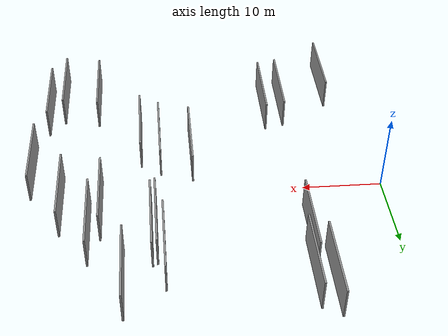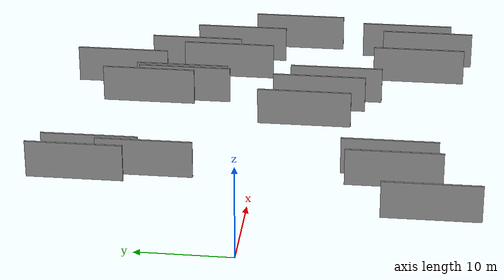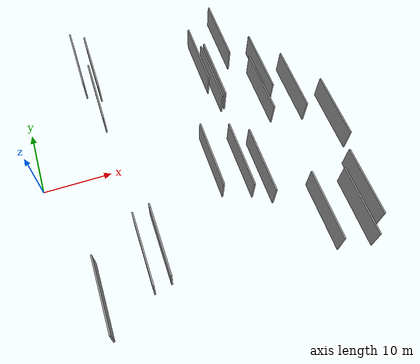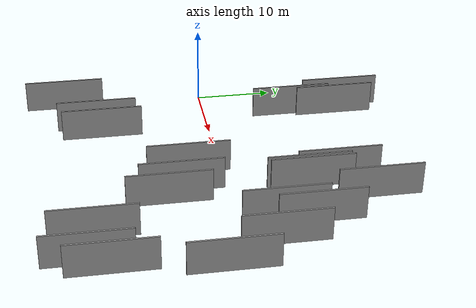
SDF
<sdf version="1.6">
 <world name="default">
  <scene>
   <sky><clouds><speed>12</speed></clouds></sky>
   <ambient>0.4 0.4 0.4 1</ambient>
   <background>0.7 0.7 0.7 1</background>
   <shadows>1</shadows>
  </scene>
  <gravity>0 0 -9.8066</gravity>
  <magnetic_field>6e-06 2.3e-05 -4.2e-05</magnetic_field>
  <physics default="0" name="default_physics" type="ode">
   <ode>
    <solver>
     <type>quick</type>
     <iters>10</iters>
     <sor>1.0</sor>
     <use_dynamic_moi_rescaling>0</use_dynamic_moi_rescaling>
    </solver>
    <constraints>
     <cfm>0</cfm>
     <erp>0.2</erp>
     <contact_max_correcting_vel>100</contact_max_correcting_vel>
     <contact_surface_layer>0.001</contact_surface_layer>
    </constraints>
   </ode>
   <max_step_size>0.004</max_step_size>
   <real_time_factor>1</real_time_factor>
   <real_time_update_rate>250</real_time_update_rate>
  </physics>
  <light name="sun" type="directional">
   <pose>0 0 10 0 0 0</pose>
   <diffuse>0.8 0.8 0.8 1</diffuse>
   <specular>0.2 0.2 0.2 1</specular>
   <attenuation>
    <range>1000</range>
    <constant>0.9</constant>
    <linear>0.01</linear>
    <quadratic>0.001</quadratic>
   </attenuation>
   <direction>-0.5 0.1 -0.9</direction>
  </light>
  <model name="grey_wall_1">
   <static>1</static>
   <pose>27.7297 12.7606 2.5 0.000000 0.000000 1.570796</pose>
   <link name="link">
    <pose>0 0 2.00 0 0 0</pose>
    <collision name="collision"><geometry><box><size>10.00 0.2 4.00</size></box></geometry></collision>
    <visual name="visual">
     <cast_shadows>0</cast_shadows>
     <geometry><box><size>10.00 0.2 4.00</size></box></geometry>
     <material>
      <script>
       <uri>model://grey_wall/materials/scripts</uri>
       <uri>model://grey_wall/materials/textures</uri>
       <name>vrc/grey_wall</name>
      </script>
     </material>
    </visual>
   </link>
  </model>
  <model name="grey_wall_2">
   <static>1</static>
   <pose>29.1136 9.2306 2.5 0.000000 0.000000 1.570796</pose>
   <link name="link">
    <pose>0 0 2.00 0 0 0</pose>
    <collision name="collision"><geometry><box><size>10.00 0.2 4.00</size></box></geometry></collision>
    <visual name="visual">
     <cast_shadows>0</cast_shadows>
     <geometry><box><size>10.00 0.2 4.00</size></box></geometry>
     <material>
      <script>
       <uri>model://grey_wall/materials/scripts</uri>
       <uri>model://grey_wall/materials/textures</uri>
       <name>vrc/grey_wall</name>
      </script>
     </material>
    </visual>
   </link>
  </model>
  <model name="grey_wall_3">
   <static>1</static>
   <pose>34.9821 4.7703 2.5 0.000000 0.000000 1.570796</pose>
   <link name="link">
    <pose>0 0 2.00 0 0 0</pose>
    <collision name="collision"><geometry><box><size>10.00 0.2 4.00</size></box></geometry></collision>
    <visual name="visual">
     <cast_shadows>0</cast_shadows>
     <geometry><box><size>10.00 0.2 4.00</size></box></geometry>
     <material>
      <script>
       <uri>model://grey_wall/materials/scripts</uri>
       <uri>model://grey_wall/materials/textures</uri>
       <name>vrc/grey_wall</name>
      </script>
     </material>
    </visual>
   </link>
  </model>
  <model name="grey_wall_4">
   <static>1</static>
   <pose>13.6669 -14.2070 2.5 0.000000 0.000000 1.570796</pose>
   <link name="link">
    <pose>0 0 2.00 0 0 0</pose>
    <collision name="collision"><geometry><box><size>10.00 0.2 4.00</size></box></geometry></collision>
    <visual name="visual">
     <cast_shadows>0</cast_shadows>
     <geometry><box><size>10.00 0.2 4.00</size></box></geometry>
     <material>
      <script>
       <uri>model://grey_wall/materials/scripts</uri>
       <uri>model://grey_wall/materials/textures</uri>
       <name>vrc/grey_wall</name>
      </script>
     </material>
    </visual>
   </link>
  </model>
  <model name="grey_wall_5">
   <static>1</static>
   <pose>23.8813 -4.6090 2.5 0.000000 0.000000 1.570796</pose>
   <link name="link">
    <pose>0 0 2.00 0 0 0</pose>
    <collision name="collision"><geometry><box><size>10.00 0.2 4.00</size></box></geometry></collision>
    <visual name="visual">
     <cast_shadows>0</cast_shadows>
     <geometry><box><size>10.00 0.2 4.00</size></box></geometry>
     <material>
      <script>
       <uri>model://grey_wall/materials/scripts</uri>
       <uri>model://grey_wall/materials/textures</uri>
       <name>vrc/grey_wall</name>
      </script>
     </material>
    </visual>
   </link>
  </model>
  <model name="grey_wall_6">
   <static>1</static>
   <pose>5.0486 -18.6719 2.5 0.000000 0.000000 1.570796</pose>
   <link name="link">
    <pose>0 0 2.00 0 0 0</pose>
    <collision name="collision"><geometry><box><size>10.00 0.2 4.00</size></box></geometry></collision>
    <visual name="visual">
     <cast_shadows>0</cast_shadows>
     <geometry><box><size>10.00 0.2 4.00</size></box></geometry>
     <material>
      <script>
       <uri>model://grey_wall/materials/scripts</uri>
       <uri>model://grey_wall/materials/textures</uri>
       <name>vrc/grey_wall</name>
      </script>
     </material>
    </visual>
   </link>
  </model>
  <model name="grey_wall_7">
   <static>1</static>
   <pose>30.1408 -7.6224 2.5 0.000000 0.000000 1.570796</pose>
   <link name="link">
    <pose>0 0 2.00 0 0 0</pose>
    <collision name="collision"><geometry><box><size>10.00 0.2 4.00</size></box></geometry></collision>
    <visual name="visual">
     <cast_shadows>0</cast_shadows>
     <geometry><box><size>10.00 0.2 4.00</size></box></geometry>
     <material>
      <script>
       <uri>model://grey_wall/materials/scripts</uri>
       <uri>model://grey_wall/materials/textures</uri>
       <name>vrc/grey_wall</name>
      </script>
     </material>
    </visual>
   </link>
  </model>
  <model name="grey_wall_8">
   <static>1</static>
   <pose>11.0710 10.6341 2.5 0.000000 0.000000 1.570796</pose>
   <link name="link">
    <pose>0 0 2.00 0 0 0</pose>
    <collision name="collision"><geometry><box><size>10.00 0.2 4.00</size></box></geometry></collision>
    <visual name="visual">
     <cast_shadows>0</cast_shadows>
     <geometry><box><size>10.00 0.2 4.00</size></box></geometry>
     <material>
      <script>
       <uri>model://grey_wall/materials/scripts</uri>
       <uri>model://grey_wall/materials/textures</uri>
       <name>vrc/grey_wall</name>
      </script>
     </material>
    </visual>
   </link>
  </model>
  <model name="grey_wall_9">
   <static>1</static>
   <pose>28.5449 8.9120 2.5 0.000000 0.000000 1.570796</pose>
   <link name="link">
    <pose>0 0 2.00 0 0 0</pose>
    <collision name="collision"><geometry><box><size>10.00 0.2 4.00</size></box></geometry></collision>
    <visual name="visual">
     <cast_shadows>0</cast_shadows>
     <geometry><box><size>10.00 0.2 4.00</size></box></geometry>
     <material>
      <script>
       <uri>model://grey_wall/materials/scripts</uri>
       <uri>model://grey_wall/materials/textures</uri>
       <name>vrc/grey_wall</name>
      </script>
     </material>
    </visual>
   </link>
  </model>
  <model name="grey_wall_10">
   <static>1</static>
   <pose>42.0780 -14.9169 2.5 0.000000 0.000000 1.570796</pose>
   <link name="link">
    <pose>0 0 2.00 0 0 0</pose>
    <collision name="collision"><geometry><box><size>10.00 0.2 4.00</size></box></geometry></collision>
    <visual name="visual">
     <cast_shadows>0</cast_shadows>
     <geometry><box><size>10.00 0.2 4.00</size></box></geometry>
     <material>
      <script>
       <uri>model://grey_wall/materials/scripts</uri>
       <uri>model://grey_wall/materials/textures</uri>
       <name>vrc/grey_wall</name>
      </script>
     </material>
    </visual>
   </link>
  </model>
  <model name="grey_wall_11">
   <static>1</static>
   <pose>35.6807 -16.4544 2.5 0.000000 0.000000 1.570796</pose>
   <link name="link">
    <pose>0 0 2.00 0 0 0</pose>
    <collision name="collision"><geometry><box><size>10.00 0.2 4.00</size></box></geometry></collision>
    <visual name="visual">
     <cast_shadows>0</cast_shadows>
     <geometry><box><size>10.00 0.2 4.00</size></box></geometry>
     <material>
      <script>
       <uri>model://grey_wall/materials/scripts</uri>
       <uri>model://grey_wall/materials/textures</uri>
       <name>vrc/grey_wall</name>
      </script>
     </material>
    </visual>
   </link>
  </model>
  <model name="grey_wall_12">
   <static>1</static>
   <pose>32.3566 16.3644 2.5 0.000000 0.000000 1.570796</pose>
   <link name="link">
    <pose>0 0 2.00 0 0 0</pose>
    <collision name="collision"><geometry><box><size>10.00 0.2 4.00</size></box></geometry></collision>
    <visual name="visual">
     <cast_shadows>0</cast_shadows>
     <geometry><box><size>10.00 0.2 4.00</size></box></geometry>
     <material>
      <script>
       <uri>model://grey_wall/materials/scripts</uri>
       <uri>model://grey_wall/materials/textures</uri>
       <name>vrc/grey_wall</name>
      </script>
     </material>
    </visual>
   </link>
  </model>
  <model name="grey_wall_13">
   <static>1</static>
   <pose>9.6298 17.5691 2.5 0.000000 0.000000 1.570796</pose>
   <link name="link">
    <pose>0 0 2.00 0 0 0</pose>
    <collision name="collision"><geometry><box><size>10.00 0.2 4.00</size></box></geometry></collision>
    <visual name="visual">
     <cast_shadows>0</cast_shadows>
     <geometry><box><size>10.00 0.2 4.00</size></box></geometry>
     <material>
      <script>
       <uri>model://grey_wall/materials/scripts</uri>
       <uri>model://grey_wall/materials/textures</uri>
       <name>vrc/grey_wall</name>
      </script>
     </material>
    </visual>
   </link>
  </model>
  <model name="grey_wall_14">
   <static>1</static>
   <pose>43.4850 -2.5409 2.5 0.000000 0.000000 1.570796</pose>
   <link name="link">
    <pose>0 0 2.00 0 0 0</pose>
    <collision name="collision"><geometry><box><size>10.00 0.2 4.00</size></box></geometry></collision>
    <visual name="visual">
     <cast_shadows>0</cast_shadows>
     <geometry><box><size>10.00 0.2 4.00</size></box></geometry>
     <material>
      <script>
       <uri>model://grey_wall/materials/scripts</uri>
       <uri>model://grey_wall/materials/textures</uri>
       <name>vrc/grey_wall</name>
      </script>
     </material>
    </visual>
   </link>
  </model>
  <model name="grey_wall_15">
   <static>1</static>
   <pose>39.7110 3.7896 2.5 0.000000 0.000000 1.570796</pose>
   <link name="link">
    <pose>0 0 2.00 0 0 0</pose>
    <collision name="collision"><geometry><box><size>10.00 0.2 4.00</size></box></geometry></collision>
    <visual name="visual">
     <cast_shadows>0</cast_shadows>
     <geometry><box><size>10.00 0.2 4.00</size></box></geometry>
     <material>
      <script>
       <uri>model://grey_wall/materials/scripts</uri>
       <uri>model://grey_wall/materials/textures</uri>
       <name>vrc/grey_wall</name>
      </script>
     </material>
    </visual>
   </link>
  </model>
  <model name="grey_wall_16">
   <static>1</static>
   <pose>27.7596 -5.9204 2.5 0.000000 0.000000 1.570796</pose>
   <link name="link">
    <pose>0 0 2.00 0 0 0</pose>
    <collision name="collision"><geometry><box><size>10.00 0.2 4.00</size></box></geometry></collision>
    <visual name="visual">
     <cast_shadows>0</cast_shadows>
     <geometry><box><size>10.00 0.2 4.00</size></box></geometry>
     <material>
      <script>
       <uri>model://grey_wall/materials/scripts</uri>
       <uri>model://grey_wall/materials/textures</uri>
       <name>vrc/grey_wall</name>
      </script>
     </material>
    </visual>
   </link>
  </model>
  <model name="grey_wall_17">
   <static>1</static>
   <pose>40.1789 -17.2906 2.5 0.000000 0.000000 1.570796</pose>
   <link name="link">
    <pose>0 0 2.00 0 0 0</pose>
    <collision name="collision"><geometry><box><size>10.00 0.2 4.00</size></box></geometry></collision>
    <visual name="visual">
     <cast_shadows>0</cast_shadows>
     <geometry><box><size>10.00 0.2 4.00</size></box></geometry>
     <material>
      <script>
       <uri>model://grey_wall/materials/scripts</uri>
       <uri>model://grey_wall/materials/textures</uri>
       <name>vrc/grey_wall</name>
      </script>
     </material>
    </visual>
   </link>
  </model>
  <model name="grey_wall_18">
   <static>1</static>
   <pose>11.6455 16.3313 2.5 0.000000 0.000000 1.570796</pose>
   <link name="link">
    <pose>0 0 2.00 0 0 0</pose>
    <collision name="collision"><geometry><box><size>10.00 0.2 4.00</size></box></geometry></collision>
    <visual name="visual">
     <cast_shadows>0</cast_shadows>
     <geometry><box><size>10.00 0.2 4.00</size></box></geometry>
     <material>
      <script>
       <uri>model://grey_wall/materials/scripts</uri>
       <uri>model://grey_wall/materials/textures</uri>
       <name>vrc/grey_wall</name>
      </script>
     </material>
    </visual>
   </link>
  </model>
  <model name="grey_wall_19">
   <static>1</static>
   <pose>11.2823 -14.7544 2.5 0.000000 0.000000 1.570796</pose>
   <link name="link">
    <pose>0 0 2.00 0 0 0</pose>
    <collision name="collision"><geometry><box><size>10.00 0.2 4.00</size></box></geometry></collision>
    <visual name="visual">
     <cast_shadows>0</cast_shadows>
     <geometry><box><size>10.00 0.2 4.00</size></box></geometry>
     <material>
      <script>
       <uri>model://grey_wall/materials/scripts</uri>
       <uri>model://grey_wall/materials/textures</uri>
       <name>vrc/grey_wall</name>
      </script>
     </material>
    </visual>
   </link>
  </model>
  <model name="grey_wall_20">
   <static>1</static>
   <pose>36.3270 8.5463 2.5 0.000000 0.000000 1.570796</pose>
   <link name="link">
    <pose>0 0 2.00 0 0 0</pose>
    <collision name="collision"><geometry><box><size>10.00 0.2 4.00</size></box></geometry></collision>
    <visual name="visual">
     <cast_shadows>0</cast_shadows>
     <geometry><box><size>10.00 0.2 4.00</size></box></geometry>
     <material>
      <script>
       <uri>model://grey_wall/materials/scripts</uri>
       <uri>model://grey_wall/materials/textures</uri>
       <name>vrc/grey_wall</name>
      </script>
     </material>
    </visual>
   </link>
  </model>
 </world>
</sdf>
